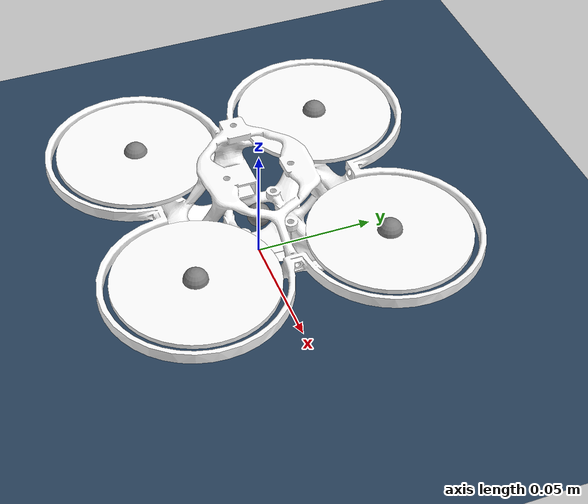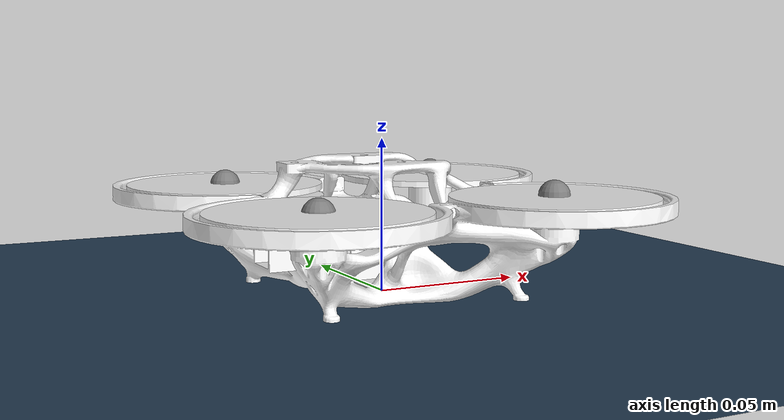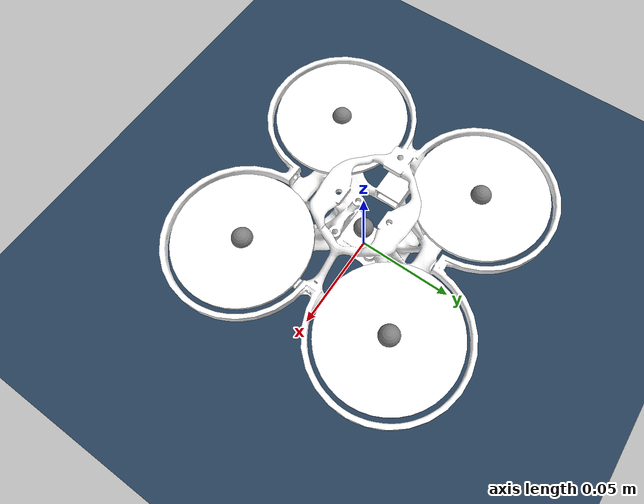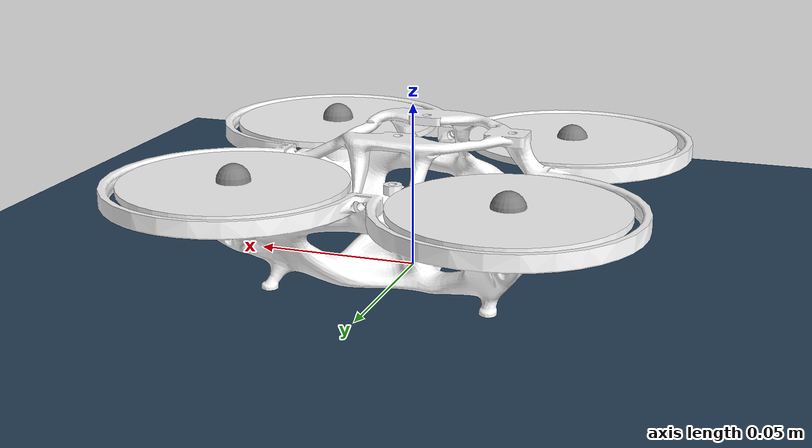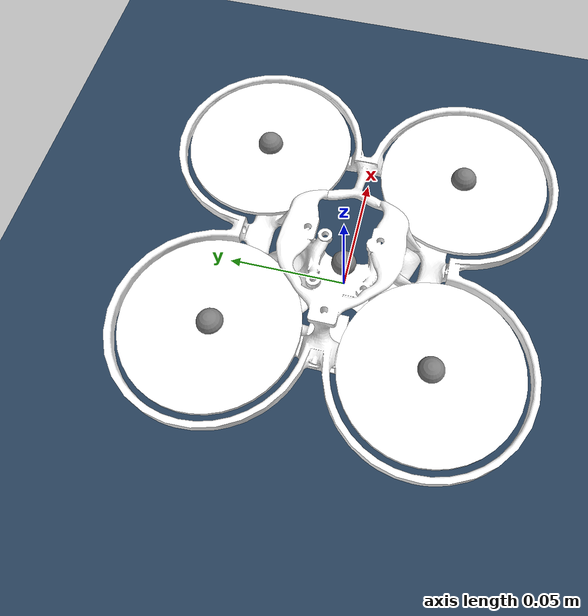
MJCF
<mujoco model="drone scene">

  <include file="drone.xml"/>
  <statistic center="0 0 0.5" extent="2"/>

  <visual>
    <headlight diffuse="0.6 0.6 0.6" ambient="0.3 0.3 0.3" specular="0 0 0"/>
    <rgba haze="0.15 0.25 0.35 1"/>
    <global azimuth="120" elevation="-20"/>
  </visual>

  <asset>
    <texture type="skybox" builtin="gradient" rgb1="0.3 0.5 0.7" rgb2="0 0 0" width="512" height="3072"/>
    <texture type="2d" name="groundplane" builtin="checker" mark="edge" rgb1="0.2 0.3 0.4" rgb2="0.1 0.2 0.3"
      markrgb="0.8 0.8 0.8" width="300" height="300"/>
    <material name="groundplane" texture="groundplane" texuniform="true" texrepeat="5 5" reflectance="0.2"/>
  </asset>

  <worldbody>
    <light pos="0 0 1.5" dir="0 0 -1" directional="true"/>
    <geom name="floor" size="0 0 0.05" type="plane" material="groundplane"/>
  </worldbody>
</mujoco>

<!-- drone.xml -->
<mujoco model="urdfdrone">
  <compiler autolimits="true" assetdir="assets/drone"/>

  <option timestep="0.01" density="1.225" viscosity="1.8e-5"/>

  <default>
    <default class="x2">
      <geom mass="0"/>
      <motor ctrlrange="0 13"/>
      <mesh scale="0.01 0.01 0.01"/>
      <default class="visual">
        <geom group="2" type="mesh" contype="0" conaffinity="0"/>
      </default>
      <default class="collision">
        <geom group="3" type="box"/>
        <default class="rotor">
          <geom type="ellipsoid" size=".13 .13 .01"/>
        </default>
      </default>
      <site group="5"/>
    </default>
  </default>

  <asset>
    <mesh name="base_link" content_type="model/stl" file="base_link.STL"/>
    <mesh name="prop1" content_type="model/stl" file="prop1.STL"/>
    <mesh name="prop2" content_type="model/stl" file="prop2.STL"/>
    <mesh name="prop3" content_type="model/stl" file="prop3.STL"/>
    <mesh name="prop4" content_type="model/stl" file="prop4.STL"/>
  </asset>

  <worldbody>
    <body name="base_link" pos="0 0 0">
      <joint name="base" type="free"/>
      <geom type="mesh" rgba="1 1 1 1" mesh="base_link"/>
      <site name="imu" pos="0 0 .02"/>
    <body name="prop1" pos="0.039799 -0.039799 0.0336">
      <inertial pos="0 0 -0.001" quat="0.5 0.5 -0.5 0.5" mass="0.00693608" diaginertia="3.75335e-06 1.87898e-06 1.87898e-06"/>
      <joint name="prop1" pos="0 0 0" axis="0 0 1"/>
      <geom type="mesh" rgba="1 1 1 1" mesh="prop1"/>
    </body>
    <body name="prop2" pos="-0.039799 -0.039799 0.032484">
      <inertial pos="0 0 0.000116422" quat="0.5 0.5 -0.5 0.5" mass="0.00693608" diaginertia="3.75335e-06 1.87898e-06 1.87898e-06"/>
      <joint name="prop2" pos="0 0 0" axis="0 0 1"/>
      <geom type="mesh" rgba="1 1 1 1" mesh="prop2"/>
    </body>
    <body name="prop3" pos="-0.039799 0.039799 0.033094">
      <inertial pos="0 0 -0.000494174" quat="0.5 0.5 -0.5 0.5" mass="0.00693608" diaginertia="3.75335e-06 1.87898e-06 1.87898e-06"/>
      <joint name="prop3" pos="0 0 0" axis="0 0 1"/>
      <geom type="mesh" rgba="1 1 1 1" mesh="prop3"/>
    </body>
    <body name="prop4" pos="0.039799 0.039799 0.0336">
      <inertial pos="0 0 -0.001" quat="0.5 0.5 -0.5 0.5" mass="0.00693608" diaginertia="3.75335e-06 1.87898e-06 1.87898e-06"/>
      <joint name="prop4" pos="0 0 0" axis="0 0 1"/>
      <geom type="mesh" rgba="1 1 1 1" mesh="prop4"/>
    </body>
      <site name="thrust1" pos="0.039799 -0.039799 0.0336"/>
      <site name="thrust2" pos="-0.039799 -0.039799 0.032484"/>
      <site name="thrust3" pos="-0.039799 0.039799 0.033094"/>
      <site name="thrust4" pos="0.039799 0.039799 0.0336"/>
    </body>
  </worldbody>
  <!-- Are the gears correct? Now its supposed to be as the real drone -->
  <actuator>
    <motor class="x2" name="thrust1" site="thrust1" gear="0 0 1 0 0  .0201"/>
    <motor class="x2" name="thrust2" site="thrust2" gear="0 0 1 0 0  -.0201"/>
    <motor class="x2" name="thrust3" site="thrust3" gear="0 0 1 0 0  .0201"/>
    <motor class="x2" name="thrust4" site="thrust4" gear="0 0 1 0 0 -.0201"/>
  </actuator>

  <sensor>
    <gyro name="body_gyro" site="imu"/>
    <accelerometer name="body_linacc" site="imu"/>
    <framequat name="body_quat" objtype="site" objname="imu"/>
  </sensor>

  <keyframe>
    <key name="hover" qpos=".3 1 0.2 0 0" ctrl="3.2495625 3.2495625 3.2495625 3.2495625"/>
  </keyframe>
</mujoco>
